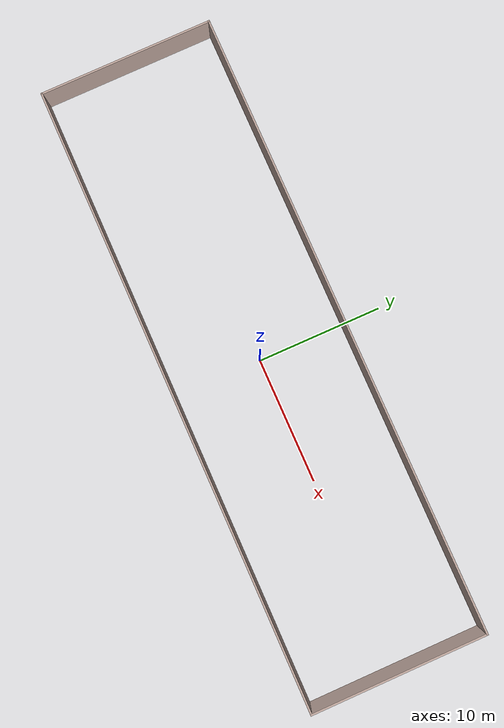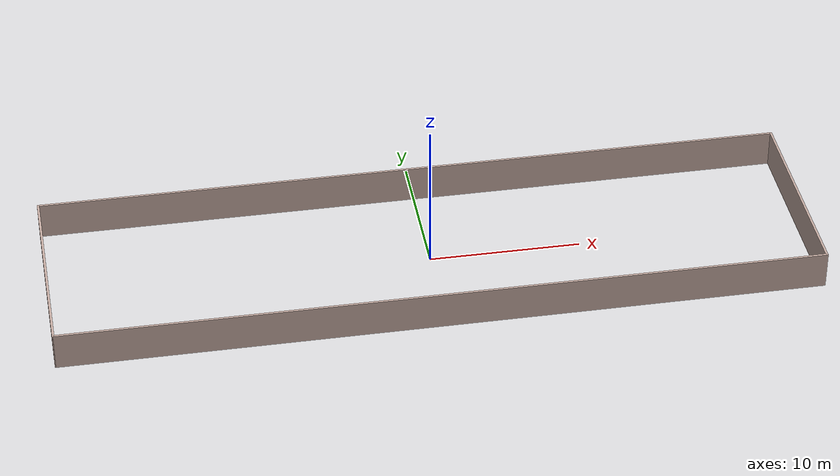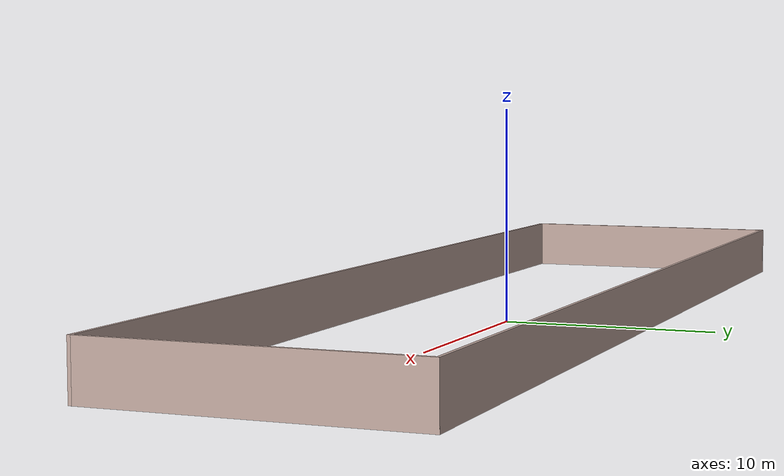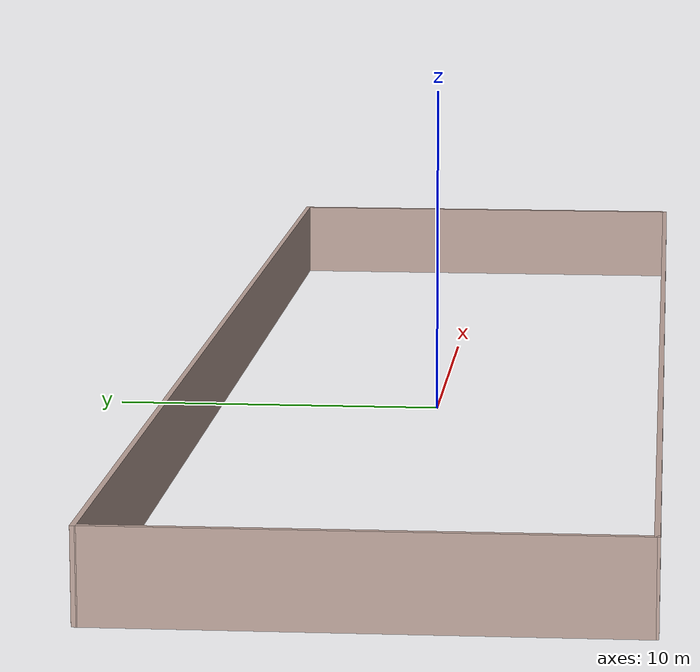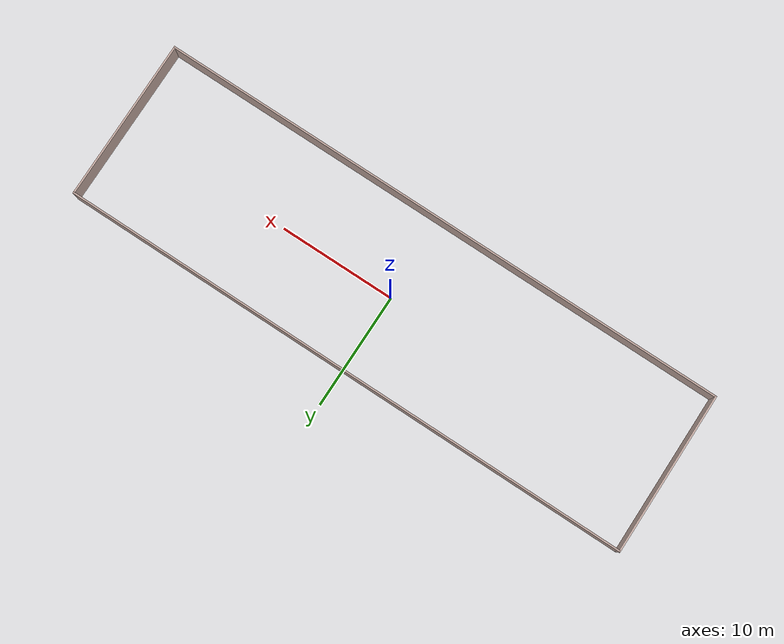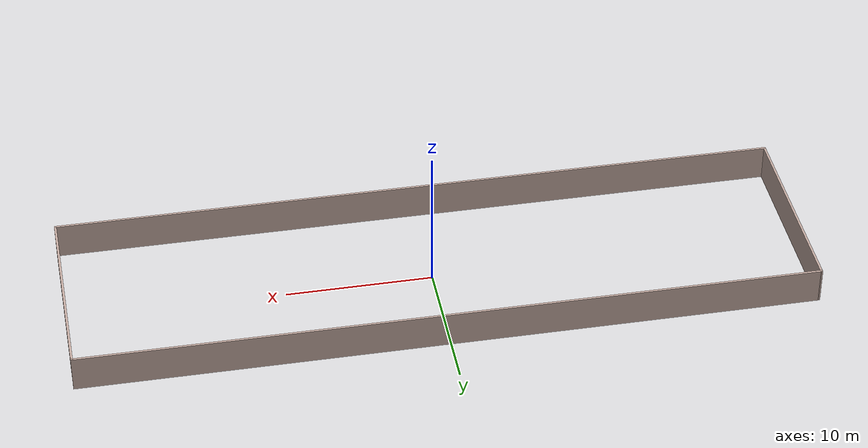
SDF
<?xml version='1.0'?>
<sdf version='1.7'>
  <model name='platz_01'>
    <pose>-0.168788 -0.062178 0 0 -0 0</pose>
    <link name='Wall_31'>
      <collision name='Wall_31_Collision'>
        <geometry>
          <box>
            <size>50.1064 0.15 2.5</size>
          </box>
        </geometry>
        <pose>0 0 1.25 0 -0 0</pose>
      </collision>
      <visual name='Wall_31_Visual'>
        <pose>0 0 1.25 0 -0 0</pose>
        <geometry>
          <box>
            <size>50.1064 0.15 2.5</size>
          </box>
        </geometry>
        <material>
          <script>
            <uri>file://media/materials/scripts/gazebo.material</uri>
            <name>Gazebo/Grey</name>
          </script>
          <ambient>0.760784 0.662745 0.627451 1</ambient>
        </material>
        <meta>
          <layer>0</layer>
        </meta>
      </visual>
      <pose>0.000288 6.92518 0 0 -0 0</pose>
    </link>
    <link name='Wall_34'>
      <collision name='Wall_34_Collision'>
        <geometry>
          <box>
            <size>14 0.15 2.5</size>
          </box>
        </geometry>
        <pose>0 0 1.25 0 -0 0</pose>
      </collision>
      <visual name='Wall_34_Visual'>
        <pose>0 0 1.25 0 -0 0</pose>
        <geometry>
          <box>
            <size>14 0.15 2.5</size>
          </box>
        </geometry>
        <material>
          <script>
            <uri>file://media/materials/scripts/gazebo.material</uri>
            <name>Gazebo/Grey</name>
          </script>
          <ambient>0.760784 0.662745 0.627451 1</ambient>
        </material>
        <meta>
          <layer>0</layer>
        </meta>
      </visual>
      <pose>24.9786 -0 0 0 -0 -1.57082</pose>
    </link>
    <link name='Wall_35'>
      <collision name='Wall_35_Collision'>
        <geometry>
          <box>
            <size>50 0.15 2.5</size>
          </box>
        </geometry>
        <pose>0 0 1.25 0 -0 0</pose>
      </collision>
      <visual name='Wall_35_Visual'>
        <pose>0 0 1.25 0 -0 0</pose>
        <geometry>
          <box>
            <size>50 0.15 2.5</size>
          </box>
        </geometry>
        <material>
          <script>
            <uri>file://media/materials/scripts/gazebo.material</uri>
            <name>Gazebo/Grey</name>
          </script>
          <ambient>0.760784 0.662745 0.627451 1</ambient>
        </material>
        <meta>
          <layer>0</layer>
        </meta>
      </visual>
      <pose>0.053442 -6.92518 0 0 -0 3.14159</pose>
    </link>
    <link name='Wall_36'>
      <collision name='Wall_36_Collision'>
        <geometry>
          <box>
            <size>14.0004 0.15 2.5</size>
          </box>
        </geometry>
        <pose>0 0 1.25 0 -0 0</pose>
      </collision>
      <visual name='Wall_36_Visual'>
        <pose>0 0 1.25 0 -0 0</pose>
        <geometry>
          <box>
            <size>14.0004 0.15 2.5</size>
          </box>
        </geometry>
        <material>
          <script>
            <uri>file://media/materials/scripts/gazebo.material</uri>
            <name>Gazebo/Grey</name>
          </script>
          <ambient>0.760784 0.662745 0.627451 1</ambient>
        </material>
        <meta>
          <layer>0</layer>
        </meta>
      </visual>
      <pose>-24.9249 -0 0 0 -0 1.5785</pose>
    </link>
    <static>1</static>
  </model>
</sdf>
